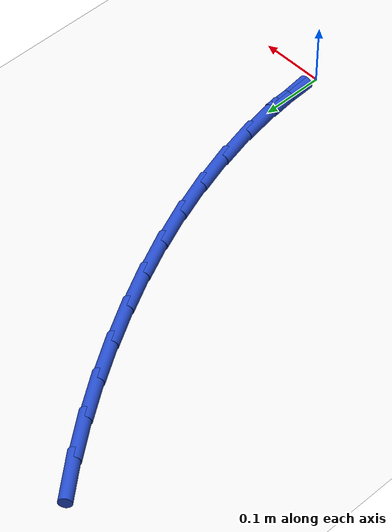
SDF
<sdf version="1.6">
 <world name="default">
  <model name="ground_plane">
   <static>1</static>
   <link name="link">
    <collision name="collision">
     <geometry><plane><normal>0 0 1</normal><size>100 100</size></plane></geometry>
     <surface><friction><ode><mu>100</mu><mu2>50</mu2></ode></friction></surface>
    </collision>
    <visual name="visual">
     <cast_shadows>0</cast_shadows>
     <geometry><plane><normal>0 0 1</normal><size>100 100</size></plane></geometry>
     <material>
      <script><uri>file://media/materials/scripts/gazebo.material</uri><name>Gazebo/WhiteGlow</name></script>
     </material>
    </visual>
   </link>
  </model>
  <model name="line">
   <link name="link_1">
    <pose>-0.0026469425430824516 0.06096776302867161 0.01 0 1.57 -1.4624279038441566</pose>
    <collision name="collision">
     <geometry><cylinder><radius>0.01</radius><length>0.08</length></cylinder></geometry>
    </collision>
    <visual name="visual">
     <material>
      <script><name>Gazebo/Blue</name><uri>file://media/materials/scripts/gazebo.material</uri></script>
     </material>
     <geometry><cylinder><radius>0.01</radius><length>0.08</length></cylinder></geometry>
    </visual>
   </link>
   <link name="link_2">
    <pose>-0.00920668992025758 0.12126252852564584 0.01 0 1.57 -1.3997442023911872</pose>
    <collision name="collision">
     <geometry><cylinder><radius>0.01</radius><length>0.08</length></cylinder></geometry>
    </collision>
    <visual name="visual">
     <material>
      <script><name>Gazebo/Blue</name><uri>file://media/materials/scripts/gazebo.material</uri></script>
     </material>
     <geometry><cylinder><radius>0.01</radius><length>0.08</length></cylinder></geometry>
    </visual>
   </link>
   <link name="link_3">
    <pose>-0.019507537255899 0.1808945692419145 0.01 0 1.57 -1.3398230678234082</pose>
    <collision name="collision">
     <geometry><cylinder><radius>0.01</radius><length>0.08</length></cylinder></geometry>
    </collision>
    <visual name="visual">
     <material>
      <script><name>Gazebo/Blue</name><uri>file://media/materials/scripts/gazebo.material</uri></script>
     </material>
     <geometry><cylinder><radius>0.01</radius><length>0.08</length></cylinder></geometry>
    </visual>
   </link>
   <link name="link_4">
    <pose>-0.0333777796743803 0.2398741579284694 0.01 0 1.57 -1.2830123482417248</pose>
    <collision name="collision">
     <geometry><cylinder><radius>0.01</radius><length>0.08</length></cylinder></geometry>
    </collision>
    <visual name="visual">
     <material>
      <script><name>Gazebo/Blue</name><uri>file://media/materials/scripts/gazebo.material</uri></script>
     </material>
     <geometry><cylinder><radius>0.01</radius><length>0.08</length></cylinder></geometry>
    </visual>
   </link>
   <link name="link_5">
    <pose>-0.050645712300075044 0.2982115673363022 0.01 0 1.57 -1.2295438668831664</pose>
    <collision name="collision">
     <geometry><cylinder><radius>0.01</radius><length>0.08</length></cylinder></geometry>
    </collision>
    <visual name="visual">
     <material>
      <script><name>Gazebo/Blue</name><uri>file://media/materials/scripts/gazebo.material</uri></script>
     </material>
     <geometry><cylinder><radius>0.01</radius><length>0.08</length></cylinder></geometry>
    </visual>
   </link>
   <link name="link_6">
    <pose>-0.07113963025735671 0.35591707021640456 0.01 0 1.57 -1.1795442439349644</pose>
    <collision name="collision">
     <geometry><cylinder><radius>0.01</radius><length>0.08</length></cylinder></geometry>
    </collision>
    <visual name="visual">
     <material>
      <script><name>Gazebo/Blue</name><uri>file://media/materials/scripts/gazebo.material</uri></script>
     </material>
     <geometry><cylinder><radius>0.01</radius><length>0.08</length></cylinder></geometry>
    </visual>
   </link>
   <link name="link_7">
    <pose>-0.09468782867059897 0.4130009393197684 0.01 0 1.57 -1.1330510103287494</pose>
    <collision name="collision">
     <geometry><cylinder><radius>0.01</radius><length>0.08</length></cylinder></geometry>
    </collision>
    <visual name="visual">
     <material>
      <script><name>Gazebo/Blue</name><uri>file://media/materials/scripts/gazebo.material</uri></script>
     </material>
     <geometry><cylinder><radius>0.01</radius><length>0.08</length></cylinder></geometry>
    </visual>
   </link>
   <link name="link_8">
    <pose>-0.12111860266417532 0.4694734473973853 0.01 0 1.57 -1.0900309065169491</pose>
    <collision name="collision">
     <geometry><cylinder><radius>0.01</radius><length>0.08</length></cylinder></geometry>
    </collision>
    <visual name="visual">
     <material>
      <script><name>Gazebo/Blue</name><uri>file://media/materials/scripts/gazebo.material</uri></script>
     </material>
     <geometry><cylinder><radius>0.01</radius><length>0.08</length></cylinder></geometry>
    </visual>
   </link>
   <link name="link_9">
    <pose>-0.15026024736245935 0.525344867200247 0.01 0 1.57 -1.0501454593378745</pose>
    <collision name="collision">
     <geometry><cylinder><radius>0.01</radius><length>0.08</length></cylinder></geometry>
    </collision>
    <visual name="visual">
     <material>
      <script><name>Gazebo/Blue</name><uri>file://media/materials/scripts/gazebo.material</uri></script>
     </material>
     <geometry><cylinder><radius>0.01</radius><length>0.08</length></cylinder></geometry>
    </visual>
   </link>
   <link name="link_10">
    <pose>-0.18194598396053055 0.5806017180207578 0.01 0 1.57 -1.010774854017166</pose>
    <collision name="collision">
     <geometry><cylinder><radius>0.01</radius><length>0.08</length></cylinder></geometry>
    </collision>
    <visual name="visual">
     <material>
      <script><name>Gazebo/Blue</name><uri>file://media/materials/scripts/gazebo.material</uri></script>
     </material>
     <geometry><cylinder><radius>0.01</radius><length>0.08</length></cylinder></geometry>
    </visual>
   </link>
   <link name="link_11">
    <pose>-0.2160557829565276 0.6350050945278215 0.01 0 1.57 -0.9701203297886514</pose>
    <collision name="collision">
     <geometry><cylinder><radius>0.01</radius><length>0.08</length></cylinder></geometry>
    </collision>
    <visual name="visual">
     <material>
      <script><name>Gazebo/Blue</name><uri>file://media/materials/scripts/gazebo.material</uri></script>
     </material>
     <geometry><cylinder><radius>0.01</radius><length>0.08</length></cylinder></geometry>
    </visual>
   </link>
   <link name="link_12">
    <pose>-0.25249543300626887 0.6881915965189008 0.01 0 1.57 -0.9276441463647997</pose>
    <collision name="collision">
     <geometry><cylinder><radius>0.01</radius><length>0.08</length></cylinder></geometry>
    </collision>
    <visual name="visual">
     <material>
      <script><name>Gazebo/Blue</name><uri>file://media/materials/scripts/gazebo.material</uri></script>
     </material>
     <geometry><cylinder><radius>0.01</radius><length>0.08</length></cylinder></geometry>
    </visual>
   </link>
   <link name="link_13">
    <pose>-0.291170994189008 0.7397965149906469 0.01 0 1.57 -0.8828062935219506</pose>
    <collision name="collision">
     <geometry><cylinder><radius>0.01</radius><length>0.08</length></cylinder></geometry>
    </collision>
    <visual name="visual">
     <material>
      <script><name>Gazebo/Blue</name><uri>file://media/materials/scripts/gazebo.material</uri></script>
     </material>
     <geometry><cylinder><radius>0.01</radius><length>0.08</length></cylinder></geometry>
    </visual>
   </link>
   <link name="link_111">
    <pose>-0.0026894558852409885 0.06089410013634819 0.01 0 1.57 -1.5266588947975372</pose>
    <collision name="collision">
     <geometry><cylinder><radius>0.01</radius><length>0.08</length></cylinder></geometry>
    </collision>
    <visual name="visual">
     <material>
      <script><name>Gazebo/Blue</name><uri>file://media/materials/scripts/gazebo.material</uri></script>
     </material>
     <geometry><cylinder><radius>0.01</radius><length>0.08</length></cylinder></geometry>
    </visual>
   </link>
  </model>
 </world>
</sdf>
